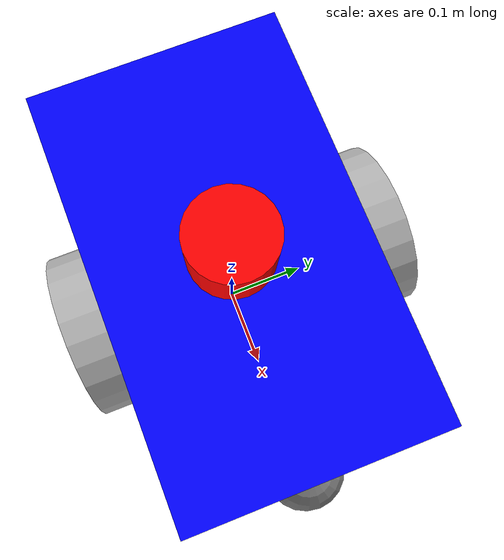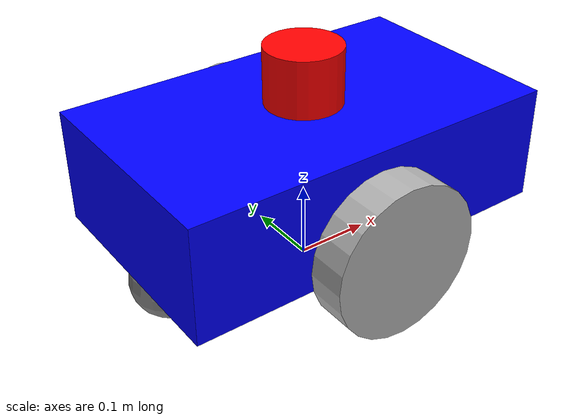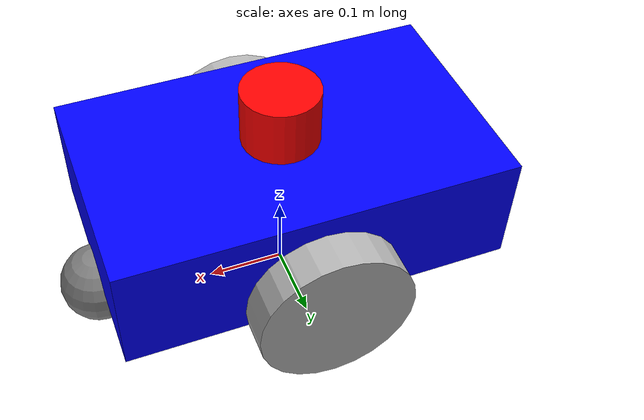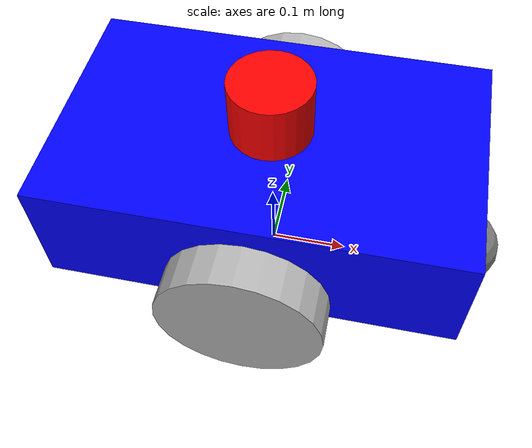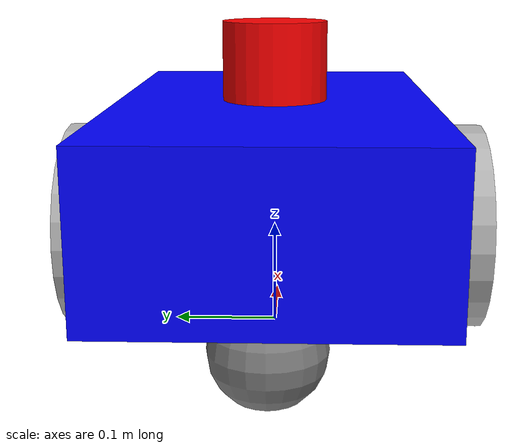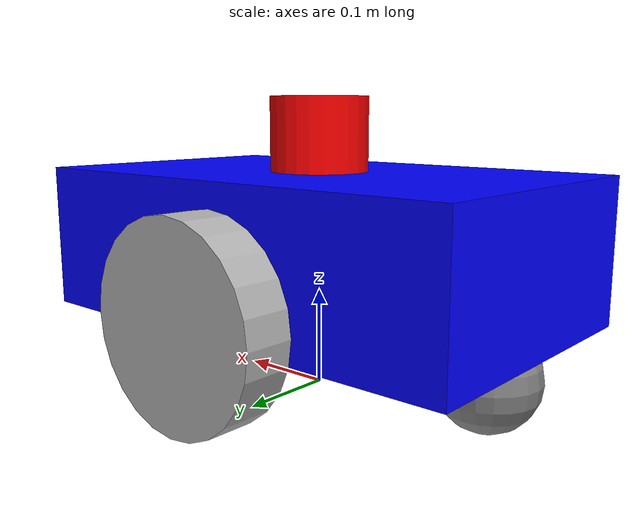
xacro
<?xml version="1.0"?>
<robot xmlns:xacro="http://www.ros.org/wiki/xacro" name="rudimentary_bot">

  <!-- Base Link (Chassis) -->
  <!-- base_link origin is raised so wheels are below/within chassis -->
  <link name="base_link">
    <visual>
      <origin xyz="0 0 0.15" rpy="0 0 0"/>
      <geometry>
        <box size="0.5 0.3 0.15"/>
      </geometry>
      <material name="blue">
        <color rgba="0 0 1 1"/>
      </material>
    </visual>
    <collision>
      <origin xyz="0 0 0.15" rpy="0 0 0"/>
      <geometry>
        <box size="0.5 0.3 0.15"/>
      </geometry>
    </collision>
    <inertial>
      <origin xyz="0 0 0.15" rpy="0 0 0"/>
      <mass value="10.0"/>
      <inertia ixx="0.1" ixy="0" ixz="0" iyy="0.1" iyz="0" izz="0.1"/>
    </inertial>
  </link>

  <!-- Left Wheel -->
  <link name="left_wheel">
    <visual>
      <origin xyz="0 0 0" rpy="1.5708 0 0"/>
      <geometry>
        <cylinder radius="0.1" length="0.05"/>
      </geometry>
      <material name="light_gray">
        <color rgba="0.7 0.7 0.7 1"/>
      </material>
    </visual>
    <collision>
      <origin xyz="0 0 0" rpy="1.5708 0 0"/>
      <geometry>
        <cylinder radius="0.1" length="0.05"/>
      </geometry>
    </collision>
    <inertial>
      <mass value="1.0"/>
      <inertia ixx="0.005" ixy="0" ixz="0" iyy="0.005" iyz="0" izz="0.01"/>
    </inertial>
  </link>

  <!-- Right Wheel -->
  <link name="right_wheel">
    <visual>
      <origin xyz="0 0 0" rpy="1.5708 0 0"/>
      <geometry>
        <cylinder radius="0.1" length="0.05"/>
      </geometry>
      <material name="light_gray">
        <color rgba="0.7 0.7 0.7 1"/>
      </material>
    </visual>
    <collision>
      <origin xyz="0 0 0" rpy="1.5708 0 0"/>
      <geometry>
        <cylinder radius="0.1" length="0.05"/>
      </geometry>
    </collision>
    <inertial>
      <mass value="1.0"/>
      <inertia ixx="0.005" ixy="0" ixz="0" iyy="0.005" iyz="0" izz="0.01"/>
    </inertial>
  </link>

  <!-- Rear Caster Wheel -->
  <link name="caster_wheel">
    <visual>
      <origin xyz="0 0 0" rpy="0 0 0"/>
      <geometry>
        <sphere radius="0.05"/>
      </geometry>
      <material name="gray">
        <color rgba="0.5 0.5 0.5 1"/>
      </material>
    </visual>
    <collision>
      <origin xyz="0 0 0" rpy="0 0 0"/>
      <geometry>
        <sphere radius="0.05"/>
      </geometry>
    </collision>
    <inertial>
      <mass value="0.5"/>
      <inertia ixx="0.001" ixy="0" ixz="0" iyy="0.001" iyz="0" izz="0.001"/>
    </inertial>
  </link>

  <!-- Front Caster Wheel (prevents forward pitch during braking) -->
  <link name="front_caster_wheel">
    <visual>
      <origin xyz="0 0 0" rpy="0 0 0"/>
      <geometry>
        <sphere radius="0.05"/>
      </geometry>
      <material name="gray">
        <color rgba="0.5 0.5 0.5 1"/>
      </material>
    </visual>
    <collision>
      <origin xyz="0 0 0" rpy="0 0 0"/>
      <geometry>
        <sphere radius="0.05"/>
      </geometry>
    </collision>
    <inertial>
      <mass value="0.5"/>
      <inertia ixx="0.001" ixy="0" ixz="0" iyy="0.001" iyz="0" izz="0.001"/>
    </inertial>
  </link>

  <!-- Laser Link (Forward-facing, X-axis) -->
  <link name="laser_link">
    <visual>
      <origin xyz="0 0 0" rpy="0 0 0"/>
      <geometry>
        <cylinder radius="0.05" length="0.1"/>
      </geometry>
      <material name="red">
        <color rgba="1 0 0 1"/>
      </material>
    </visual>
    <inertial>
      <mass value="0.1"/>
      <inertia ixx="0.001" ixy="0" ixz="0" iyy="0.001" iyz="0" izz="0.001"/>
    </inertial>
  </link>

  <!-- IMU Link -->
  <link name="imu_link">
    <inertial>
      <mass value="0.01"/>
      <inertia ixx="0.0001" ixy="0" ixz="0" iyy="0.0001" iyz="0" izz="0.0001"/>
    </inertial>
  </link>

  <!-- Joints -->
  <joint name="left_wheel_joint" type="continuous">
    <parent link="base_link"/>
    <child link="left_wheel"/>
    <origin xyz="0 0.175 0.1" rpy="0 0 0"/>
    <axis xyz="0 1 0"/>
  </joint>

  <joint name="right_wheel_joint" type="continuous">
    <parent link="base_link"/>
    <child link="right_wheel"/>
    <origin xyz="0 -0.175 0.1" rpy="0 0 0"/>
    <axis xyz="0 1 0"/>
  </joint>

  <joint name="caster_wheel_joint" type="fixed">
    <parent link="base_link"/>
    <child link="caster_wheel"/>
    <origin xyz="-0.2 0 0.05" rpy="0 0 0"/>
  </joint>

  <joint name="front_caster_wheel_joint" type="fixed">
    <parent link="base_link"/>
    <child link="front_caster_wheel"/>
    <!-- Front caster wheel positioned at front of chassis (x=0.25m is front edge of 0.5m chassis) -->
    <!-- Prevents forward pitch during braking, eliminating false wall detections from ground -->
    <origin xyz="0.25 0 0.05" rpy="0 0 0"/>
  </joint>

  <joint name="laser_joint" type="fixed">
    <parent link="base_link"/>
    <child link="laser_link"/>
    <!-- Centered (x=0, y=0) and raised to avoid chassis/wheel occlusion -->
    <!-- Chassis top is at z=0.225, wheels top at z=0.2 -->
    <!-- With front caster wheel preventing forward pitch, z=0.25m is sufficient (just above chassis) -->
    <origin xyz="0 0 0.25" rpy="0 0 0"/>
  </joint>

  <joint name="imu_joint" type="fixed">
    <parent link="base_link"/>
    <child link="imu_link"/>
    <origin xyz="0 0 0.15" rpy="0 0 0"/>
  </joint>

  <!-- Gazebo Plugins -->

  <!-- Differential Drive Plugin -->
  <gazebo>
    <plugin filename="gz-sim-diff-drive-system" name="gz::sim::systems::DiffDrive">
      <left_joint>left_wheel_joint</left_joint>
      <right_joint>right_wheel_joint</right_joint>
      <wheel_separation>0.35</wheel_separation>
      <wheel_radius>0.1</wheel_radius>
      <odom_publish_frequency>50</odom_publish_frequency>
      <topic>cmd_vel</topic>
      <odom_topic>odom</odom_topic>
      <publish_odom>true</publish_odom>
      <!-- CRITICAL: Set to false so EKF handles TF -->
      <publish_odom_tf>false</publish_odom_tf>
      <frame_id>odom</frame_id>
      <child_frame_id>base_link</child_frame_id>
      <max_linear_velocity>0.5</max_linear_velocity>
      <max_angular_velocity>1.0</max_angular_velocity>
    </plugin>
  </gazebo>

  <!-- Lidar Sensor Plugin -->
  <gazebo reference="laser_link">
    <sensor name="lidar" type="gpu_lidar">
      <pose>0 0 0 0 0 0</pose>
      <update_rate>10</update_rate>  <!-- Reduced to 10Hz to prevent RViz message queue overflow -->
      <topic>scan</topic>
      <gz_frame_id>laser_link</gz_frame_id>
      <always_on>true</always_on>
      <visualize>true</visualize>
      <!-- Try CPU lidar if gpu_lidar has rendering artifacts causing false walls -->
      <!-- No visibility mask - rely on laser height (z=0.25m) and min_range (0.4m) to avoid self-hits -->
      <lidar>
        <scan>
          <horizontal>
            <samples>360</samples>
            <resolution>1</resolution>
            <min_angle>-3.14159</min_angle>
            <max_angle>3.14159</max_angle>
          </horizontal>
          <vertical>
            <samples>1</samples>
            <resolution>0.01</resolution>
            <min_angle>0</min_angle>
            <max_angle>0</max_angle>
          </vertical>
        </scan>
        <range>
          <min>0.4</min>  <!-- Increased to 0.4m to completely eliminate robot body hits -->
          <!-- Chassis corners: sqrt(0.25^2 + 0.15^2) ≈ 0.29m. Wheels extend to ~0.275m from center. -->
          <!-- With LIDAR at z=0.25m, 0.4m min range ensures no false wall detections from robot body -->
          <max>10.0</max> <!-- Increased physical sensor range to see across rooms -->
          <resolution>0.01</resolution>
        </range>
      </lidar>
    </sensor>
  </gazebo>

  <!-- IMU Sensor Plugin -->
  <gazebo reference="imu_link">
    <sensor name="imu" type="imu">
      <pose>0 0 0 0 0 0</pose>
      <update_rate>100</update_rate>
      <topic>imu</topic>
      <gz_frame_id>imu_link</gz_frame_id>
      <imu>
        <angular_velocity>
          <x>
            <noise type="gaussian">
              <mean>0.0</mean>
              <stddev>0.0002</stddev>
            </noise>
          </x>
          <y>
            <noise type="gaussian">
              <mean>0.0</mean>
              <stddev>0.0002</stddev>
            </noise>
          </y>
          <z>
            <noise type="gaussian">
              <mean>0.0</mean>
              <stddev>0.0002</stddev>
            </noise>
          </z>
        </angular_velocity>
        <linear_acceleration>
          <x>
            <noise type="gaussian">
              <mean>0.0</mean>
              <stddev>0.017</stddev>
            </noise>
          </x>
          <y>
            <noise type="gaussian">
              <mean>0.0</mean>
              <stddev>0.017</stddev>
            </noise>
          </y>
          <z>
            <noise type="gaussian">
              <mean>0.0</mean>
              <stddev>0.017</stddev>
            </noise>
          </z>
        </linear_acceleration>
      </imu>
    </sensor>
  </gazebo>

</robot>
